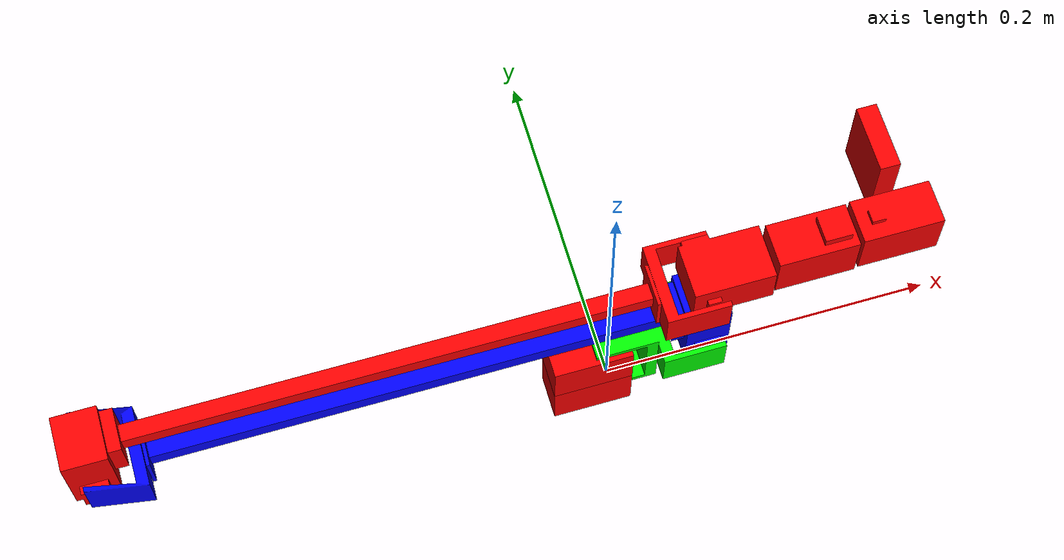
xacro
<?xml version="1.0"?>

<robot name="hector_arm_5dof"
    xmlns:sensor="http://playerstage.sourceforge.net/gazebo/xmlschema/#sensor"
    xmlns:controller="http://playerstage.sourceforge.net/gazebo/xmlschema/#controller"
    xmlns:interface="http://playerstage.sourceforge.net/gazebo/xmlschema/#interface">

    <!-- Included URDF Files -->
    <include filename="$(find hector_small_arm_description)/urdf/hector_arm_ax12_5dof.urdf.xacro" />
     <link name="base">
	<inertial>
	  <mass value="0.1" />
	  <origin xyz="0.0 0.0 0.0" rpy="0 0 0" />
	  <inertia ixx="0.001" ixy="0.0" ixz="0.0" iyy="0.001" iyz="0.0" izz="0.001" />
	</inertial>

	<visual>
	  <origin xyz="0.0 0.0 -0.03" rpy="0 0 0" />
	  <geometry>
	    <mesh filename="package://hector_small_arm_description/meshes/hector_arm/hector_arm_link_0.stl"/>
	  </geometry>
	  <material name="red">
	    <color rgba="1.0 0.0 0.0 1"/>
	  </material>
	</visual>

        <collision>
	  <origin xyz="0.0 0.0 -0.03" rpy="0 0 0" />
	  <geometry>
	    <mesh filename="package://hector_small_arm_description/meshes/hector_arm/hector_arm_link_0.stl"/>
	  </geometry>
	</collision>
      </link>

	<gazebo reference="endeffector_yaw_link">
	  <material>Gazebo/Red</material>
	    <turnGravityOff>true</turnGravityOff>
	</gazebo>

    <hector_arm parent="base" >
        <origin xyz="0 0 0" rpy="0 0 0"/>
    </hector_arm>
</robot>

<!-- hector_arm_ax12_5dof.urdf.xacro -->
<robot name="hector_arm"
xmlns:sensor="http://playerstage.sourceforge.net/gazebo/xmlschema/#sensor"
xmlns:controller="http://playerstage.sourceforge.net/gazebo/xmlschema/#controller"
  xmlns:interface="http://playerstage.sourceforge.net/gazebo/xmlschema/#interface">

    <!-- Properties (Constants) -->
    <property name="M_PI" value="3.14159"/>
    <property name="M_PI_H" value="1.57079"/>

    <macro name="hector_arm" params="parent *origin">

      <!-- ****** JOINT DEFINITIONS ****** -->
      <joint name="arm_base_joint" type="fixed">
	<insert_block name="origin" />
	<parent link="${parent}"/>
	<child link="arm_base_link"/>
      </joint>

      <joint name="joint_0" type="revolute">
	<parent link="arm_base_link"/>
	<child link="connector"/>
	<origin xyz="0 0 0.03" rpy="0 0 0" />
	<axis xyz="0 0 -1" />
	<limit  lower="-1.5708" upper="1.5708" effort="10.0" velocity="1.5708" />
	<dynamics damping="1.0" friction="1.0"/>
      </joint>

      <joint name="joint_1" type="revolute">
	<parent link="connector"/>
	<child link="link1"/>
	<origin xyz="0.055 0 0.01" rpy="${M_PI_H} 0 ${M_PI}" />
	<axis xyz="0 0 1" />
	<limit  lower="-1.5708" upper="1.5708" effort="10.0" velocity="1.5708" />
	<dynamics damping="1.0" friction="1.0"/>
      </joint>

      <joint name="joint_2" type="revolute">
	<parent link="link1"/>
	<child link="link2"/>
	<origin xyz="0.355 0.03 0.001" rpy="0 ${M_PI} 0" />
	<axis xyz="0 0 1" />
	<limit  lower="-1.5708" upper="1.5708" effort="10.0" velocity="1.5708" />
	<dynamics damping="1.0" friction="1.0"/>
      </joint>

<joint name="joint_3" type="revolute">
	<parent link="link2"/>
	<child link="endeffector_nick_link"/>
	<origin xyz="0.355 0.03 0.0" rpy="0 ${M_PI} 0" />
	<axis xyz="0 0 -1" />
	<limit  lower="-1.5708" upper="1.5708" effort="10.0" velocity="1.5708" />
	<dynamics damping="1.0" friction="1.0"/>
      </joint>

<joint name="joint_4" type="revolute">
	<parent link="endeffector_nick_link"/>
	<child link="endeffector_yaw_link"/>
	<origin xyz="-0.1 0 0.0" rpy="${M_PI*0.5} ${M_PI} 0" />
	<axis xyz="0 0 -1" />
	<limit  lower="-1.5708" upper="1.5708" effort="10.0" velocity="1.5708" />
	<dynamics damping="1.0" friction="1.0"/>
      </joint>

<!-- fake 6. dof-->
<joint name="joint_5" type="revolute">
  <parent link="endeffector_yaw_link"/>
  <child link="endeffector_fake_roll_link"/>
  <origin xyz="0.0 0.0 0.0" rpy="0 0 0" />
  <axis xyz="1 0 0" />
  <limit  lower="-1.5708" upper="1.5708" effort="10.0" velocity="1.5708" />
  <dynamics damping="1.0" friction="1.0"/>
</joint>

      <!-- ****** LINK DEFINITIONS ****** -->

      <link name="arm_base_link">
	<inertial>
	  <mass value="0.25" />
	  <origin xyz="0 0 0" rpy="0 0 0" />
	  <inertia ixx="0.0001" ixy="0.0" ixz="0.0" iyy="0.0001" iyz="0.0" izz="0.0001" />
	</inertial>

	<visual>
	  <origin xyz="0.0 0.0 0.0" rpy="0 0 0" />
	  <geometry>
	    <mesh filename="package://hector_small_arm_description/meshes/hector_arm/hector_arm_link_0.stl"/>
	  </geometry>
	  <material name="red">
	    <color rgba="1.0 0.0 0.0 1"/>
	  </material>
	</visual>

        <collision>
	  <origin xyz="0.0 0.0 0.0" rpy="0 0 0" />
	  <geometry>
	    <mesh filename="package://hector_small_arm_description/meshes/hector_arm/hector_arm_link_0.stl"/>
	  </geometry>
	</collision>
      </link>

      <link name="connector" >
	<inertial>
	  <mass value="0.2" />
	  <origin xyz="-0.027 0 0" rpy="0 0 0" />
	  <inertia ixx="0.0001" ixy="0.0" ixz="0.0" iyy="0.0001" iyz="0.0" izz="0.0001" />
	</inertial>

	<visual>
	  <origin xyz="0.0 0.0 0.0" rpy="0 0 0" />
	  <geometry>
	    <mesh filename="package://hector_small_arm_description/meshes/hector_arm/hector_arm_link_1.stl"/>
	  </geometry>
	  <material name="green">
	    <color rgba="0.0 1.0 0.0 1"/>
	  </material>
	</visual>

	<collision>
	  <origin xyz="0.0 0.0 0.0" rpy="0 0 0" />
	  <geometry>
	    <mesh filename="package://hector_small_arm_description/meshes/hector_arm/hector_arm_link_1.stl"/>
	  </geometry>
	</collision>
      </link>

      <link name="link1">
	<inertial>
	  <mass value="0.15" />
	  <origin xyz="0.155 0.0 0.032" rpy="0 0 0" />
	  <inertia ixx="0.0001" ixy="0.0" ixz="0.0" iyy="0.0001" iyz="0.0" izz="0.0001" />
	</inertial>

	<visual>
	  <origin xyz="0.0 0.0 0.0" rpy="0 ${M_PI} 0" />
	  <geometry>
	    <mesh filename="package://hector_small_arm_description/meshes/hector_arm/hector_arm_link_2.stl"/>
	  </geometry>
	  <material name="blue">
	    <color rgba="0.0 0.0 1.0 1"/>
	  </material>
	</visual>

	<collision>
	  <origin xyz="0.0 0.0 0.0" rpy="0 ${M_PI} 0" />
	  <geometry>
	    <mesh filename="package://hector_small_arm_description/meshes/hector_arm/hector_arm_link_2.stl"/>
	  </geometry>
	</collision>
      </link>

      <link name="link2">
	<inertial>
	  <mass value="0.15" />
	  <origin xyz="0.155 0.0 0.032" rpy="0 0 0" />
	  <inertia ixx="0.0001" ixy="0.0" ixz="0.0" iyy="0.0001" iyz="0.0" izz="0.0001" />
	</inertial>

	<visual>
	  <origin xyz="0.0 0.0 0.0" rpy="0 0 0"/>
	  <geometry>
	    <mesh filename="package://hector_small_arm_description/meshes/hector_arm/hector_arm_link_3.stl"/>
	  </geometry>
	  <material name="red">
	    <color rgba="1.0 0.0 0.0 1"/>
	  </material>
	</visual>

	<collision>
	  <origin xyz="0.0 0.0 0.0" rpy="0 0 0"/>
	  <geometry>
	    <mesh filename="package://hector_small_arm_description/meshes/hector_arm/hector_arm_link_3.stl"/>
	  </geometry>
	</collision>
      </link>

 <link name="endeffector_nick_link">
	<inertial>
	  <mass value="0.1" />
	  <origin xyz="0.0 0.0 0.0" rpy="0 0 0" />
	  <inertia ixx="0.001" ixy="0.0" ixz="0.0" iyy="0.001" iyz="0.0" izz="0.001" />
	</inertial>

	<visual>
    <origin xyz="0.0 0.0 -0.03" rpy="0 0 0" />
    <geometry>
      <mesh filename="package://hector_small_arm_description/meshes/hector_arm/hector_arm_link_0.stl"/>
    </geometry>
    <material name="green">
      <color rgba="1.0 0.0 0.0 1"/>
    </material>
  </visual>

  <visual>
    <origin xyz="-0.075 -0.03 0" rpy="${M_PI_H} 0 ${M_PI}" />
    <geometry>
      <mesh filename="package://hector_small_arm_description/meshes/hector_arm/hector_arm_link_0.stl"/>
    </geometry>
    <material name="green">
      <color rgba="1.0 0.0 0.0 1"/>
    </material>
  </visual>

  <collision>
    <origin xyz="0.0 0.0 -0.03" rpy="0 0 0" />
    <geometry>
      <mesh filename="package://hector_small_arm_description/meshes/hector_arm/hector_arm_link_0.stl"/>
    </geometry>
  </collision>

  <collision>
    <origin xyz="-0.075 -0.03 0" rpy="${M_PI_H} 0 ${M_PI}" />
    <geometry>
      <mesh filename="package://hector_small_arm_description/meshes/hector_arm/hector_arm_link_0.stl"/>
    </geometry>
  </collision>

 </link>

 <link name="endeffector_yaw_link">
	<inertial>
	  <mass value="0.1" />
	  <origin xyz="0.0 0.0 0.0" rpy="0 0 0" />
	  <inertia ixx="0.001" ixy="0.0" ixz="0.0" iyy="0.001" iyz="0.0" izz="0.001" />
	</inertial>

	<visual>
	  <origin xyz="0.0 0.0 0.0" rpy="0 0 0" />
	  <geometry>
	    <mesh filename="package://hector_small_arm_description/meshes/hector_arm/hector_arm_link_4_v2.stl"/>
	  </geometry>
	  <material name="blue">
	    <color rgba="1.0 0.0 0.0 1"/>
	  </material>
	</visual>

        <collision>
	  <origin xyz="0.0 0.0 0.0" rpy="0 0 0" />
	  <geometry>
	    <mesh filename="package://hector_small_arm_description/meshes/hector_arm/hector_arm_link_4_v2.stl"/>
	  </geometry>
	</collision>
      </link>

  <link name="endeffector_fake_roll_link">

  </link>

<!-- ****** TRANSMISSION DEFINITIONS ****** -->
	<transmission type="pr2_mechanism_model/SimpleTransmission" name="plane_trans">
	    <actuator name="plane_motor" />
	    <joint name="joint_0" />
	    <mechanicalReduction>1.0</mechanicalReduction>
	</transmission>

	<transmission type="pr2_mechanism_model/SimpleTransmission" name="shoulder_trans">
	    <actuator name="shoulder_motor" />
	    <joint name="joint_1" />
	    <mechanicalReduction>1.0</mechanicalReduction>
	</transmission>

	<transmission type="pr2_mechanism_model/SimpleTransmission" name="elbow_trans">
	    <actuator name="elbow_motor" />
	    <joint name="joint_2" />
	    <mechanicalReduction>1.0</mechanicalReduction>
	</transmission>

	<transmission type="pr2_mechanism_model/SimpleTransmission" name="endeffector_nick_trans">
	    <actuator name="endeffector_nick_motor" />
	    <joint name="joint_3" />
	    <mechanicalReduction>1.0</mechanicalReduction>
	</transmission>

	<transmission type="pr2_mechanism_model/SimpleTransmission" name="endeffector_yaw_trans">
	    <actuator name="endeffector_yaw_motor" />
	    <joint name="joint_4" />
	    <mechanicalReduction>1.0</mechanicalReduction>
	</transmission>
	<!-- ****** MATERIAL DEFINITIONS ****** -->

	<gazebo reference="arm_base_link">
	  <material>Gazebo/Red</material>
	    <turnGravityOff>true</turnGravityOff>
	</gazebo>
		<gazebo reference="connector">
	  <material>Gazebo/Blue</material>
	    <turnGravityOff>true</turnGravityOff>
	</gazebo>
	<gazebo reference="link1">
	  <material>Gazebo/Green</material>
	    <turnGravityOff>true</turnGravityOff>
	</gazebo>
	<gazebo reference="link2">
	  <material>Gazebo/Red</material>
	    <turnGravityOff>true</turnGravityOff>
	</gazebo>
	<gazebo reference="endeffector_nick_link">
	  <material>Gazebo/Green</material>
	    <turnGravityOff>true</turnGravityOff>
	</gazebo>
	<gazebo reference="endeffector_yaw_link">
	  <material>Gazebo/Blue</material>
	    <turnGravityOff>true</turnGravityOff>
	</gazebo>
    </macro>
  </robot>
